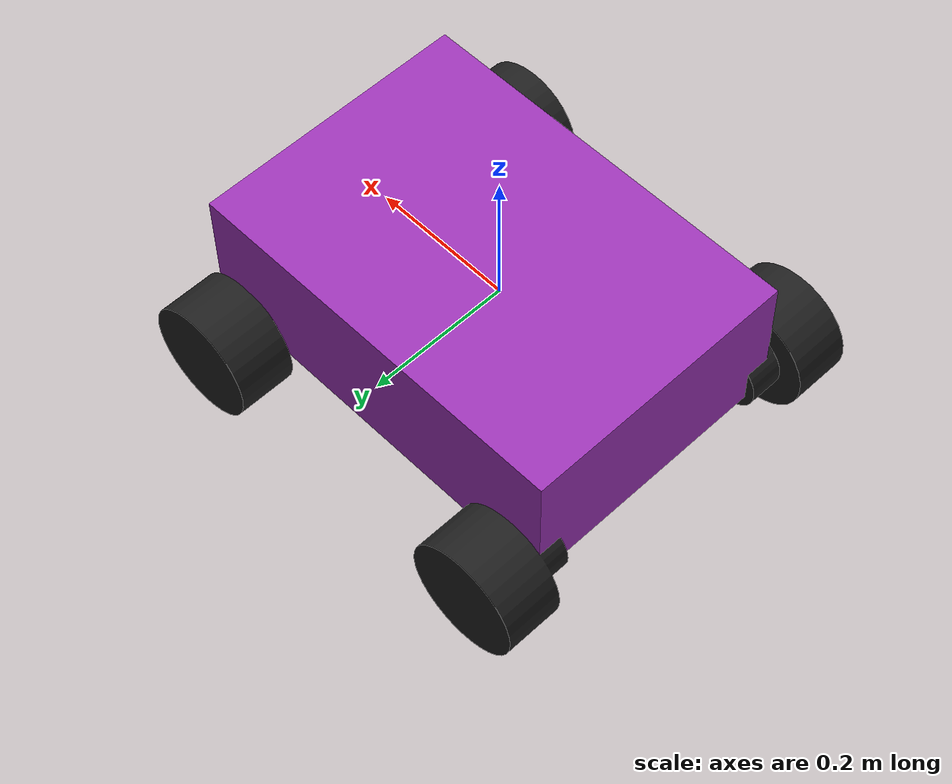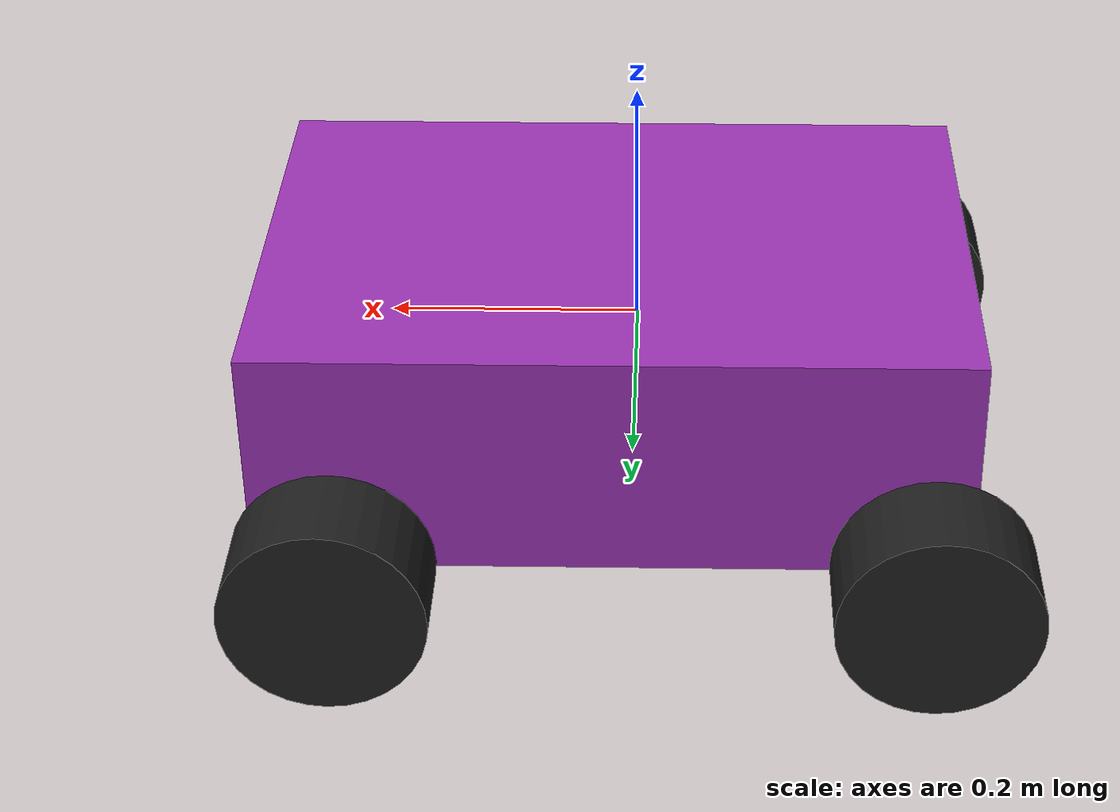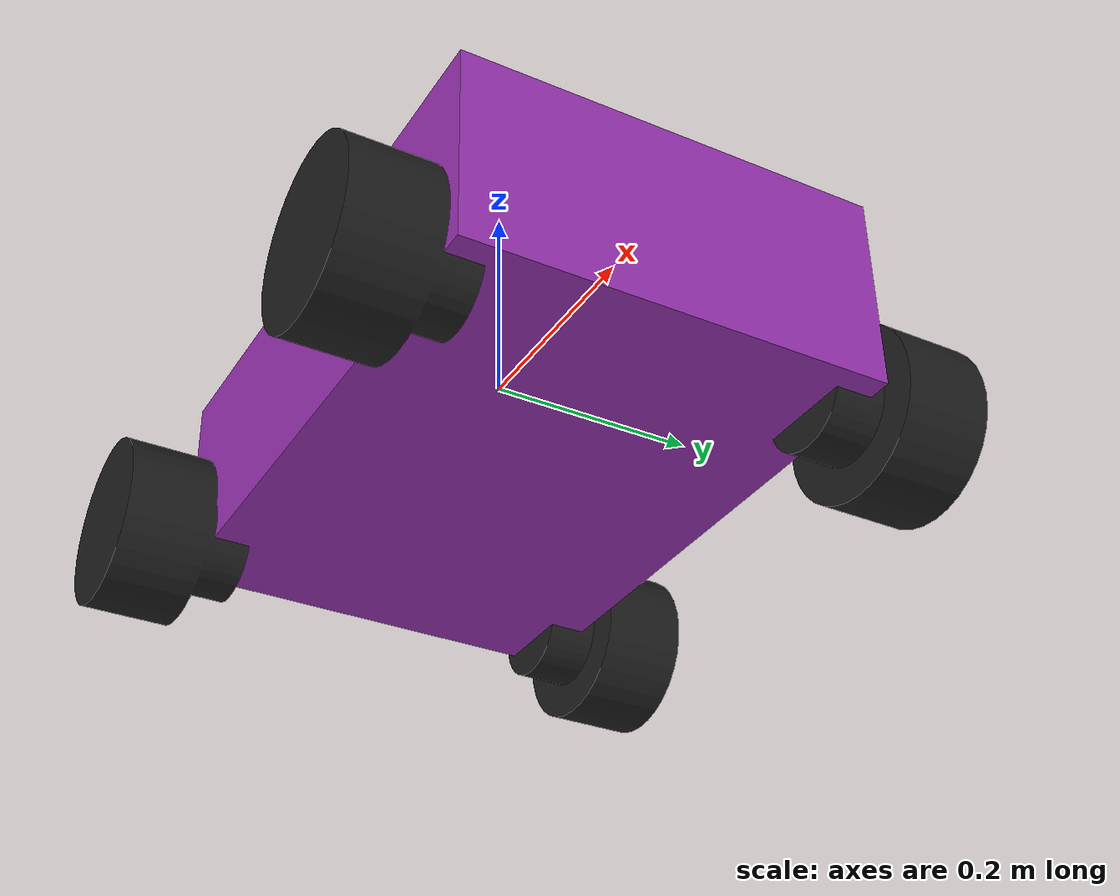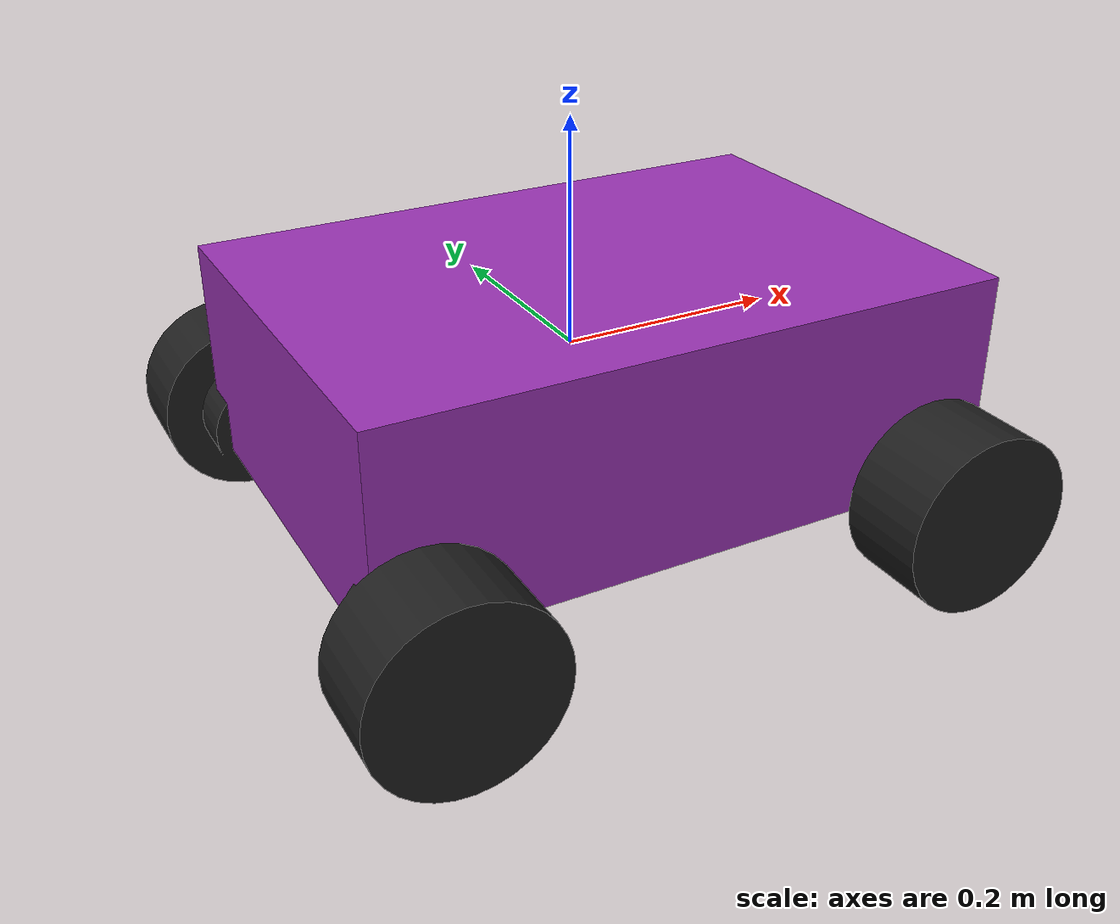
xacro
<?xml version="1.0"?>
<robot name="scout" xmlns:xacro="http://www.ros.org/wiki/xacro" >

    <xacro:include filename="robot_core.xacro" />
    <xacro:include filename="gazebo_control.xacro" />
    <xacro:include filename="gazebo_lidar.xacro" />

</robot>

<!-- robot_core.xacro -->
<robot xmlns:xacro="http://www.ros.org/wiki/xacro" >
    <!--includes-->
    <xacro:include filename="inertial_macros.xacro"/>
    <xacro:include filename="materials.xacro"/>

  <!-- Variables -->
    <xacro:property name="M_PI" value="3.14159"/>

  <!-- Vehicle Geometries -->
    <xacro:property name="base_x_size" value="0.6200000" />
    <xacro:property name="base_y_size" value="0.585000" />
    <xacro:property name="base_z_size" value="0.235000" />

    <xacro:property name="wheelbase" value="0.463951"/>
    <xacro:property name="track" value="0.416503"/>
    <xacro:property name="wheel_vertical_offset" value="-0.100998" />

    <xacro:property name="wheel_length" value="0.8e-01" />
    <xacro:property name="wheel_radius" value="1.600e-01" />

    <!-- BASE LINK -->
    <link name="base_link">

    </link>

     <!-- BASE FOOTPRINT LINK -->
    <joint name="base_footprint_joint" type="fixed">
        <parent link="base_link"/>
        <child link="base_footprint"/>
        <origin xyz="0 0 -0.05" rpy="0 0 0"/>
    </joint>

    <link name="base_footprint">

    </link>

    <!-- CHASSIS LINK -->
    <joint name="chassis_joint" type="fixed">
        <parent link="base_link"/>
        <child link="chassis"/>
        <origin xyz="0 0 0"/>
    </joint>

    <link name="chassis">
      <visual>
        <origin xyz="0 0 0" rpy="1.5707 0 -1.5707" />
        <geometry>
          <mesh filename="file://$(find scout)/urdf/meshes/scout_mini_base_link.dae" />
        </geometry>
      </visual>
      <collision>
        <origin xyz="0 0 0" rpy="1.5707 0 -1.5707" />
        <geometry>
          <mesh filename="file://$(find scout)/urdf/meshes/scout_mini_base_link_collision.stl" />
        </geometry>
      </collision>
        <xacro:inertial_box mass="0.5" x="0.3" y="0.3" z="0.15">
            <origin xyz="0.15 0 0.075" rpy="0 0 0"/>
        </xacro:inertial_box>
    </link>

    <gazebo reference="chassis">
        <material>Gazebo/Purple</material>
    </gazebo>

    <!-- LEFT WHEEL LINK -->
    <joint name="left_wheel_joint" type="continuous">
        <parent link="base_link"/>
        <child link="left_wheel"/>
      <origin xyz="${-wheelbase/2} ${track/2} ${wheel_vertical_offset}" rpy="0 0 0" />
      <axis xyz="0 1 0" rpy="0 0 0" />
    </joint>

    <link name="left_wheel">
      <visual>
        <origin xyz="0 0 0" rpy="-${M_PI/2} 0 0" />
        <geometry>
          <mesh filename="file://$(find scout)/urdf/meshes/wheel.dae" />
        </geometry>
      </visual>
      <collision>
        <origin xyz="0 0 0" rpy="-${M_PI/2} 0 0" />
        <geometry>
          <mesh filename="file://$(find scout)/urdf/meshes/wheel_collision.stl" />
        </geometry>
      </collision>
        <xacro:inertial_cylinder mass="0.1" length="0.04" radius="0.05">
            <origin xyz="0 0 0" rpy="0 0 0"/>
        </xacro:inertial_cylinder>
    </link>

    <gazebo reference="left_wheel">
        <material>Gazebo/Black</material>
    </gazebo>

    <!-- RIGHT WHEEL LINK -->
    <joint name="right_wheel_joint" type="continuous">
        <parent link="base_link"/>
        <child link="right_wheel"/>
      <origin xyz="${-wheelbase/2} ${-track/2} ${wheel_vertical_offset}" rpy="0 0 0" />
      <axis xyz="0 1 0" rpy="0 0 0" />
    </joint>

    <link name="right_wheel">
      <visual>
        <origin xyz="0 0 0" rpy="${M_PI/2} 0 0" />
        <geometry>
          <mesh filename="file://$(find scout)/urdf/meshes/wheel.dae" />
        </geometry>
      </visual>
      <collision>
        <origin xyz="0 0 0" rpy="${M_PI/2} 0 0" />
        <geometry>
          <mesh filename="file://$(find scout)/urdf/meshes/wheel_collision.stl" />
        </geometry>
      </collision>
        <xacro:inertial_cylinder mass="0.1" length="0.04" radius="0.05">
            <origin xyz="0 0 0" rpy="0 0 0"/>
        </xacro:inertial_cylinder>
    </link>

    <gazebo reference="right_wheel">
        <material>Gazebo/Black</material>
    </gazebo>

    <!-- LEFT WHEEL front LINK -->
    <joint name="left_wheel_front_joint" type="continuous">
        <parent link="base_link"/>
        <child link="left_wheel_front"/>
      <origin xyz="${wheelbase/2} ${track/2} ${wheel_vertical_offset}" rpy="0 0 0" />
      <axis xyz="0 1 0" rpy="0 0 0" />
    </joint>

    <link name="left_wheel_front">
      <visual>
        <origin xyz="0 0 0" rpy="-${M_PI/2} 0 0" />
        <geometry>
          <mesh filename="file://$(find scout)/urdf/meshes/wheel.dae" />
        </geometry>
      </visual>
      <collision>
        <origin xyz="0 0 0" rpy="-${M_PI/2} 0 0" />
        <geometry>
          <mesh filename="file://$(find scout)/urdf/meshes/wheel_collision.stl" />
        </geometry>
      </collision>
        <xacro:inertial_cylinder mass="0.1" length="0.04" radius="0.05">
            <origin xyz="0 0 0" rpy="0 0 0"/>
        </xacro:inertial_cylinder>
    </link>

    <gazebo reference="left_wheel_front">
        <material>Gazebo/Black</material>
    </gazebo>

    <!-- RIGHT WHEEL front LINK -->
    <joint name="right_wheel_front_joint" type="continuous">
        <parent link="base_link"/>
        <child link="right_wheel_front"/>
      <origin xyz="${wheelbase/2} ${-track/2} ${wheel_vertical_offset}" rpy="0 0 0" />
      <axis xyz="0 1 0" rpy="0 0 0" />
    </joint>

    <link name="right_wheel_front">
      <visual>
        <origin xyz="0 0 0" rpy="${M_PI/2} 0 0" />
        <geometry>
          <mesh filename="file://$(find scout)/urdf/meshes/wheel.dae" />
        </geometry>
      </visual>
      <collision>
        <origin xyz="0 0 0" rpy="${M_PI/2} 0 0" />
        <geometry>
          <mesh filename="file://$(find scout)/urdf/meshes/wheel_collision.stl" />
        </geometry>
      </collision>
        <xacro:inertial_cylinder mass="0.1" length="0.04" radius="0.05">
            <origin xyz="0 0 0" rpy="0 0 0"/>
        </xacro:inertial_cylinder>
    </link>

    <gazebo reference="right_wheel_front">
        <material>Gazebo/Black</material>
    </gazebo>

</robot>
